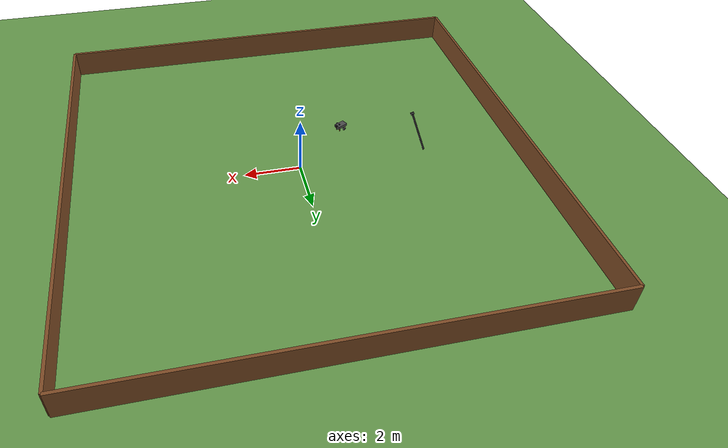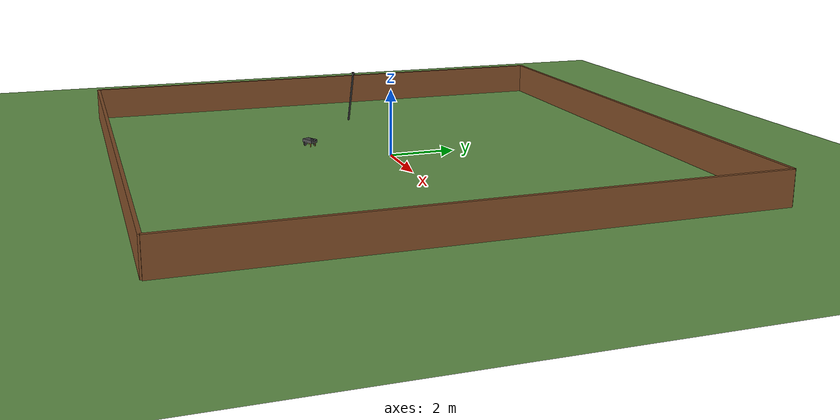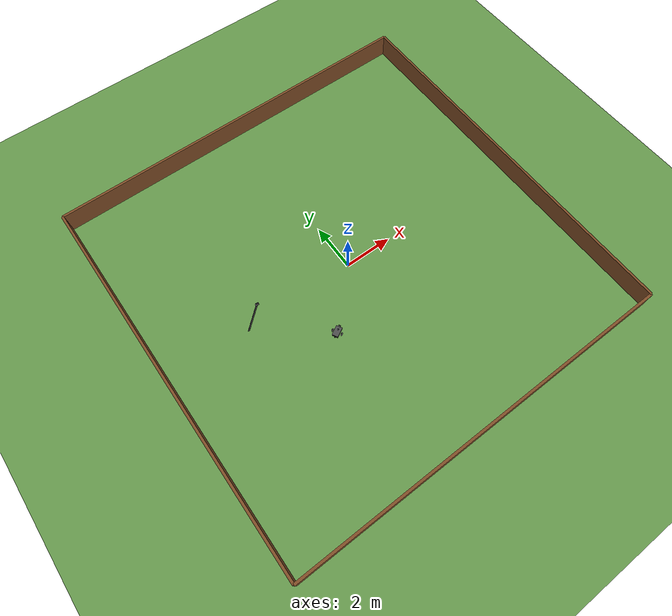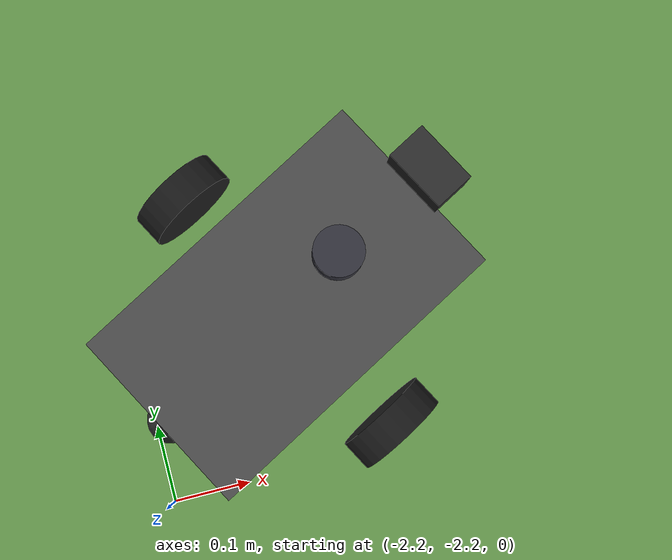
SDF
<sdf version="1.10">
 <world name="farm_world">
  <physics name="default_physics" type="ode">
   <max_step_size>0.001</max_step_size>
   <real_time_factor>1</real_time_factor>
   <real_time_update_rate>1000</real_time_update_rate>
  </physics>
  <plugin name="gz::sim::systems::Physics" filename="gz-sim-physics-system"/>
  <plugin name="gz::sim::systems::UserCommands" filename="gz-sim-user-commands-system"/>
  <plugin name="gz::sim::systems::SceneBroadcaster" filename="gz-sim-scene-broadcaster-system"/>
  <plugin name="gz::sim::systems::Sensors" filename="gz-sim-sensors-system">
   <render_engine>ogre2</render_engine>
  </plugin>
  <scene>
   <ambient>0.600000024 0.600000024 0.600000024 1</ambient>
   <background>0.400000006 0.600000024 0.899999976 1</background>
   <shadows>true</shadows>
   <grid>false</grid>
  </scene>
  <gravity>0 0 -9.8000000000000007</gravity>
  <magnetic_field>5.5644999999999998e-06 2.2875799999999999e-05 -4.2388400000000002e-05</magnetic_field>
  <atmosphere type="adiabatic"/>
  <model name="ground_plane">
   <static>true</static>
   <link name="link">
    <collision name="collision">
     <geometry><plane><normal>0 0 1</normal><size>50 50</size></plane></geometry>
     <surface><friction><ode><mu>1</mu><mu2>1</mu2></ode></friction></surface>
    </collision>
    <visual name="visual">
     <geometry><plane><normal>0 0 1</normal><size>50 50</size></plane></geometry>
     <material>
      <ambient>0.300000012 0.5 0.200000003 1</ambient>
      <diffuse>0.400000006 0.600000024 0.300000012 1</diffuse>
      <specular>0.100000001 0.100000001 0.100000001 1</specular>
     </material>
    </visual>
    <inertial>
     <mass>1</mass>
     <inertia><ixx>1</ixx><ixy>0</ixy><ixz>0</ixz><iyy>1</iyy><iyz>0</iyz><izz>1</izz></inertia>
    </inertial>
   </link>
  </model>
  <model name="fence_front">
   <static>true</static>
   <pose>0 -8 0.5 0 0 0</pose>
   <link name="link">
    <visual name="visual">
     <geometry><box><size>16 0.10000000000000001 1</size></box></geometry>
     <material>
      <ambient>0.400000006 0.25 0.100000001 1</ambient>
      <diffuse>0.5 0.300000012 0.150000006 1</diffuse>
     </material>
    </visual>
    <collision name="collision"><geometry><box><size>16 0.10000000000000001 1</size></box></geometry></collision>
    <inertial>
     <mass>1</mass>
     <inertia><ixx>1</ixx><ixy>0</ixy><ixz>0</ixz><iyy>1</iyy><iyz>0</iyz><izz>1</izz></inertia>
    </inertial>
   </link>
  </model>
  <model name="fence_back">
   <static>true</static>
   <pose>0 8 0.5 0 0 0</pose>
   <link name="link">
    <visual name="visual">
     <geometry><box><size>16 0.10000000000000001 1</size></box></geometry>
     <material>
      <ambient>0.400000006 0.25 0.100000001 1</ambient>
      <diffuse>0.5 0.300000012 0.150000006 1</diffuse>
     </material>
    </visual>
    <collision name="collision"><geometry><box><size>16 0.10000000000000001 1</size></box></geometry></collision>
    <inertial>
     <mass>1</mass>
     <inertia><ixx>1</ixx><ixy>0</ixy><ixz>0</ixz><iyy>1</iyy><iyz>0</iyz><izz>1</izz></inertia>
    </inertial>
   </link>
  </model>
  <model name="fence_left">
   <static>true</static>
   <pose>-8 0 0.5 0 0 1.5708000000000011</pose>
   <link name="link">
    <visual name="visual">
     <geometry><box><size>16 0.10000000000000001 1</size></box></geometry>
     <material>
      <ambient>0.400000006 0.25 0.100000001 1</ambient>
      <diffuse>0.5 0.300000012 0.150000006 1</diffuse>
     </material>
    </visual>
    <collision name="collision"><geometry><box><size>16 0.10000000000000001 1</size></box></geometry></collision>
    <inertial>
     <mass>1</mass>
     <inertia><ixx>1</ixx><ixy>0</ixy><ixz>0</ixz><iyy>1</iyy><iyz>0</iyz><izz>1</izz></inertia>
    </inertial>
   </link>
  </model>
  <model name="fence_right">
   <static>true</static>
   <pose>8 0 0.5 0 0 1.5708000000000011</pose>
   <link name="link">
    <visual name="visual">
     <geometry><box><size>16 0.10000000000000001 1</size></box></geometry>
     <material>
      <ambient>0.400000006 0.25 0.100000001 1</ambient>
      <diffuse>0.5 0.300000012 0.150000006 1</diffuse>
     </material>
    </visual>
    <collision name="collision"><geometry><box><size>16 0.10000000000000001 1</size></box></geometry></collision>
    <inertial>
     <mass>1</mass>
     <inertia><ixx>1</ixx><ixy>0</ixy><ixz>0</ixz><iyy>1</iyy><iyz>0</iyz><izz>1</izz></inertia>
    </inertial>
   </link>
  </model>
  <include>
   <uri>file:///home/sanket758/Education/BSBI/Advanced Robotics Application/yolo_pose_ws/install/yolo_pose_pkg/share/yolo_pose_pkg/models/camera_rig</uri>
   <name>camera_rig_1</name>
   <pose>-3.9999999999999996 0 2.2204460492503131e-16 0 -1.1102230246251568e-16 0</pose>
  </include>
  <include>
   <uri>file:///home/sanket758/Education/BSBI/Advanced Robotics Application/yolo_pose_ws/install/yolo_pose_pkg/share/yolo_pose_pkg/models/spot_micro</uri>
   <name>spot_micro</name>
   <pose>-2.000000000000008 -2.0000000000000067 0.02 8.6032017884711264e-19 6.0351040613328946e-11 0.49999999999999972</pose>
  </include>
  <light name="sun" type="directional">
   <pose>0 0 10 0 0 0</pose>
   <intensity>1</intensity>
   <direction>-0.5 0.29999999999999999 -0.90000000000000002</direction>
   <diffuse>0.899999976 0.899999976 0.800000012 1</diffuse>
   <specular>0.300000012 0.300000012 0.300000012 1</specular>
   <attenuation>
    <range>1000</range>
    <linear>0.01</linear>
    <constant>0.90000000000000002</constant>
    <quadratic>0.001</quadratic>
   </attenuation>
   <spot><inner_angle>0</inner_angle><outer_angle>0</outer_angle><falloff>0</falloff></spot>
  </light>
  <light name="fill_light" type="directional">
   <pose>0 0 10 0 0 0</pose>
   <cast_shadows>false</cast_shadows>
   <intensity>1</intensity>
   <direction>0.5 -0.29999999999999999 -0.5</direction>
   <diffuse>0.300000012 0.300000012 0.400000006 1</diffuse>
   <specular>0.100000001 0.100000001 0.100000001 1</specular>
   <attenuation><range>10</range><linear>1</linear><constant>1</constant><quadratic>0</quadratic></attenuation>
   <spot><inner_angle>0</inner_angle><outer_angle>0</outer_angle><falloff>0</falloff></spot>
  </light>
 </world>
</sdf>

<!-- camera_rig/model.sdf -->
<sdf version="1.9">
  <model name="camera_rig">
    <static>true</static>

    <link name="camera_link">
      <pose>0 0 1.8 0 0.35 0</pose>

      <visual name="mast_visual">
        <pose>0 0 -0.9 0 0 0</pose>
        <geometry>
          <cylinder>
            <radius>0.03</radius>
            <length>1.8</length>
          </cylinder>
        </geometry>
        <material>
          <ambient>0.15 0.15 0.15 1</ambient>
          <diffuse>0.20 0.20 0.20 1</diffuse>
        </material>
      </visual>

      <visual name="head_visual">
        <geometry>
          <box>
            <size>0.12 0.08 0.06</size>
          </box>
        </geometry>
        <material>
          <ambient>0.05 0.05 0.05 1</ambient>
          <diffuse>0.1 0.1 0.1 1</diffuse>
        </material>
      </visual>

      <collision name="head_collision">
        <geometry>
          <box>
            <size>0.12 0.08 0.06</size>
          </box>
        </geometry>
      </collision>

      <sensor name="camera" type="camera">
        <pose>0.08 0 0 0 0 0</pose>
        <always_on>true</always_on>
        <update_rate>30</update_rate>
        <visualize>false</visualize>
        <topic>/camera/image_raw</topic>
        <camera>
          <horizontal_fov>1.047</horizontal_fov>
          <image>
            <width>1280</width>
            <height>720</height>
            <format>R8G8B8</format>
          </image>
          <clip>
            <near>0.1</near>
            <far>100.0</far>
          </clip>
        </camera>
      </sensor>

      <inertial>
        <mass>1.0</mass>
        <inertia>
          <ixx>0.01</ixx>
          <iyy>0.01</iyy>
          <izz>0.01</izz>
          <ixy>0.0</ixy>
          <ixz>0.0</ixz>
          <iyz>0.0</iyz>
        </inertia>
      </inertial>
    </link>
  </model>
</sdf>

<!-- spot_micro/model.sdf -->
<sdf version="1.9">
  <model name="spot_micro">
    <static>false</static>

    <link name="base_link">
      <pose>0 0 0.12 0 0 0</pose>
      <inertial>
        <mass>8.0</mass>
        <inertia>
          <ixx>0.12</ixx>
          <iyy>0.16</iyy>
          <izz>0.22</izz>
          <ixy>0.0</ixy>
          <ixz>0.0</ixz>
          <iyz>0.0</iyz>
        </inertia>
      </inertial>

      <visual name="body_visual">
        <geometry>
          <box>
            <size>0.40 0.24 0.10</size>
          </box>
        </geometry>
        <material>
          <ambient>0.20 0.20 0.20 1</ambient>
          <diffuse>0.30 0.30 0.30 1</diffuse>
          <specular>0.40 0.40 0.40 1</specular>
        </material>
      </visual>

      <!-- Visual-only legs for Spot-like look -->
      <visual name="front_left_leg_visual">
        <pose>0.14 0.09 -0.08 0 0 0</pose>
        <geometry>
          <cylinder>
            <radius>0.015</radius>
            <length>0.16</length>
          </cylinder>
        </geometry>
        <material>
          <ambient>0.65 0.45 0.10 1</ambient>
          <diffuse>0.85 0.60 0.15 1</diffuse>
        </material>
      </visual>
      <visual name="front_right_leg_visual">
        <pose>0.14 -0.09 -0.08 0 0 0</pose>
        <geometry>
          <cylinder>
            <radius>0.015</radius>
            <length>0.16</length>
          </cylinder>
        </geometry>
        <material>
          <ambient>0.65 0.45 0.10 1</ambient>
          <diffuse>0.85 0.60 0.15 1</diffuse>
        </material>
      </visual>
      <visual name="rear_left_leg_visual">
        <pose>-0.14 0.09 -0.08 0 0 0</pose>
        <geometry>
          <cylinder>
            <radius>0.015</radius>
            <length>0.16</length>
          </cylinder>
        </geometry>
        <material>
          <ambient>0.65 0.45 0.10 1</ambient>
          <diffuse>0.85 0.60 0.15 1</diffuse>
        </material>
      </visual>
      <visual name="rear_right_leg_visual">
        <pose>-0.14 -0.09 -0.08 0 0 0</pose>
        <geometry>
          <cylinder>
            <radius>0.015</radius>
            <length>0.16</length>
          </cylinder>
        </geometry>
        <material>
          <ambient>0.65 0.45 0.10 1</ambient>
          <diffuse>0.85 0.60 0.15 1</diffuse>
        </material>
      </visual>

      <!-- Lower profile collision for stability -->
      <collision name="body_collision">
        <pose>0 0 -0.01 0 0 0</pose>
        <geometry>
          <box>
            <size>0.30 0.22 0.06</size>
          </box>
        </geometry>
      </collision>
    </link>

    <link name="left_wheel">
      <pose>0 0.19 0.06 1.5708 0 0</pose>
      <inertial>
        <mass>0.8</mass>
        <inertia>
          <ixx>0.002</ixx>
          <iyy>0.001</iyy>
          <izz>0.002</izz>
          <ixy>0.0</ixy>
          <ixz>0.0</ixz>
          <iyz>0.0</iyz>
        </inertia>
      </inertial>
      <visual name="left_wheel_visual">
        <geometry>
          <cylinder>
            <radius>0.06</radius>
            <length>0.04</length>
          </cylinder>
        </geometry>
        <material>
          <ambient>0.05 0.05 0.05 1</ambient>
          <diffuse>0.10 0.10 0.10 1</diffuse>
        </material>
      </visual>
      <collision name="left_wheel_collision">
        <geometry>
          <cylinder>
            <radius>0.06</radius>
            <length>0.04</length>
          </cylinder>
        </geometry>
        <surface>
          <friction>
            <ode>
              <mu>3.0</mu>
              <mu2>3.0</mu2>
            </ode>
          </friction>
        </surface>
      </collision>
    </link>

    <link name="right_wheel">
      <pose>0 -0.19 0.06 1.5708 0 0</pose>
      <inertial>
        <mass>0.8</mass>
        <inertia>
          <ixx>0.002</ixx>
          <iyy>0.001</iyy>
          <izz>0.002</izz>
          <ixy>0.0</ixy>
          <ixz>0.0</ixz>
          <iyz>0.0</iyz>
        </inertia>
      </inertial>
      <visual name="right_wheel_visual">
        <geometry>
          <cylinder>
            <radius>0.06</radius>
            <length>0.04</length>
          </cylinder>
        </geometry>
        <material>
          <ambient>0.05 0.05 0.05 1</ambient>
          <diffuse>0.10 0.10 0.10 1</diffuse>
        </material>
      </visual>
      <collision name="right_wheel_collision">
        <geometry>
          <cylinder>
            <radius>0.06</radius>
            <length>0.04</length>
          </cylinder>
        </geometry>
        <surface>
          <friction>
            <ode>
              <mu>3.0</mu>
              <mu2>3.0</mu2>
            </ode>
          </friction>
        </surface>
      </collision>
    </link>

    <link name="front_caster_link">
      <pose>0.20 0 0.03 0 0 0</pose>
      <inertial>
        <mass>0.2</mass>
        <inertia>
          <ixx>0.0001</ixx>
          <iyy>0.0001</iyy>
          <izz>0.0001</izz>
          <ixy>0.0</ixy>
          <ixz>0.0</ixz>
          <iyz>0.0</iyz>
        </inertia>
      </inertial>
      <visual name="front_caster_visual">
        <geometry>
          <sphere>
            <radius>0.03</radius>
          </sphere>
        </geometry>
        <material>
          <ambient>0.08 0.08 0.08 1</ambient>
          <diffuse>0.15 0.15 0.15 1</diffuse>
        </material>
      </visual>
      <collision name="front_caster_collision">
        <geometry>
          <sphere>
            <radius>0.03</radius>
          </sphere>
        </geometry>
        <surface>
          <friction>
            <ode>
              <mu>0.02</mu>
              <mu2>0.02</mu2>
            </ode>
          </friction>
        </surface>
      </collision>
    </link>

    <link name="rear_caster_link">
      <pose>-0.20 0 0.03 0 0 0</pose>
      <inertial>
        <mass>0.2</mass>
        <inertia>
          <ixx>0.0001</ixx>
          <iyy>0.0001</iyy>
          <izz>0.0001</izz>
          <ixy>0.0</ixy>
          <ixz>0.0</ixz>
          <iyz>0.0</iyz>
        </inertia>
      </inertial>
      <visual name="rear_caster_visual">
        <geometry>
          <sphere>
            <radius>0.03</radius>
          </sphere>
        </geometry>
        <material>
          <ambient>0.08 0.08 0.08 1</ambient>
          <diffuse>0.15 0.15 0.15 1</diffuse>
        </material>
      </visual>
      <collision name="rear_caster_collision">
        <geometry>
          <sphere>
            <radius>0.03</radius>
          </sphere>
        </geometry>
        <surface>
          <friction>
            <ode>
              <mu>0.02</mu>
              <mu2>0.02</mu2>
            </ode>
          </friction>
        </surface>
      </collision>
    </link>

    <joint name="left_wheel_joint" type="revolute">
      <parent>base_link</parent>
      <child>left_wheel</child>
      <axis>
        <xyz>0 1 0</xyz>
        <dynamics>
          <damping>0.2</damping>
          <friction>0.05</friction>
        </dynamics>
        <limit>
          <lower>-1e16</lower>
          <upper>1e16</upper>
        </limit>
      </axis>
    </joint>

    <joint name="right_wheel_joint" type="revolute">
      <parent>base_link</parent>
      <child>right_wheel</child>
      <axis>
        <xyz>0 1 0</xyz>
        <dynamics>
          <damping>0.2</damping>
          <friction>0.05</friction>
        </dynamics>
        <limit>
          <lower>-1e16</lower>
          <upper>1e16</upper>
        </limit>
      </axis>
    </joint>

    <joint name="front_caster_joint" type="fixed">
      <parent>base_link</parent>
      <child>front_caster_link</child>
    </joint>

    <joint name="rear_caster_joint" type="fixed">
      <parent>base_link</parent>
      <child>rear_caster_link</child>
    </joint>

    <link name="camera_link">
      <pose>0.22 0 0.18 0 0 0</pose>
      <inertial>
        <mass>0.2</mass>
        <inertia>
          <ixx>0.001</ixx>
          <iyy>0.001</iyy>
          <izz>0.001</izz>
          <ixy>0.0</ixy>
          <ixz>0.0</ixz>
          <iyz>0.0</iyz>
        </inertia>
      </inertial>
      <visual name="camera_visual">
        <geometry>
          <box>
            <size>0.05 0.08 0.05</size>
          </box>
        </geometry>
        <material>
          <ambient>0.12 0.12 0.12 1</ambient>
          <diffuse>0.18 0.18 0.18 1</diffuse>
        </material>
      </visual>

      <sensor name="camera" type="camera">
        <pose>0.03 0 0 0 0 0</pose>
        <always_on>true</always_on>
        <update_rate>30</update_rate>
        <visualize>false</visualize>
        <topic>/spot/camera/image_raw</topic>
        <camera>
          <horizontal_fov>1.047</horizontal_fov>
          <image>
            <width>640</width>
            <height>480</height>
            <format>R8G8B8</format>
          </image>
          <clip>
            <near>0.1</near>
            <far>100.0</far>
          </clip>
        </camera>
      </sensor>
    </link>

    <joint name="camera_joint" type="fixed">
      <parent>base_link</parent>
      <child>camera_link</child>
    </joint>

    <link name="lidar_link">
      <pose>0.08 0 0.18 0 0 0</pose>
      <inertial>
        <mass>0.2</mass>
        <inertia>
          <ixx>0.001</ixx>
          <iyy>0.001</iyy>
          <izz>0.001</izz>
          <ixy>0.0</ixy>
          <ixz>0.0</ixz>
          <iyz>0.0</iyz>
        </inertia>
      </inertial>
      <visual name="lidar_visual">
        <geometry>
          <cylinder>
            <radius>0.03</radius>
            <length>0.04</length>
          </cylinder>
        </geometry>
        <material>
          <ambient>0.15 0.15 0.18 1</ambient>
          <diffuse>0.20 0.20 0.24 1</diffuse>
        </material>
      </visual>

      <sensor name="lidar" type="lidar">
        <always_on>true</always_on>
        <update_rate>15</update_rate>
        <visualize>false</visualize>
        <topic>/scan</topic>
        <lidar>
          <scan>
            <horizontal>
              <samples>720</samples>
              <resolution>1</resolution>
              <min_angle>-1.5708</min_angle>
              <max_angle>1.5708</max_angle>
            </horizontal>
          </scan>
          <range>
            <min>0.12</min>
            <max>15.0</max>
            <resolution>0.01</resolution>
          </range>
        </lidar>
      </sensor>
    </link>

    <joint name="lidar_joint" type="fixed">
      <parent>base_link</parent>
      <child>lidar_link</child>
    </joint>

    <plugin filename="gz-sim-diff-drive-system" name="gz::sim::systems::DiffDrive">
      <left_joint>left_wheel_joint</left_joint>
      <right_joint>right_wheel_joint</right_joint>
      <wheel_separation>0.38</wheel_separation>
      <wheel_radius>0.06</wheel_radius>
      <topic>/cmd_vel</topic>
      <odom_topic>/odom</odom_topic>
      <tf_topic>/tf</tf_topic>
      <frame_id>spot_micro/odom</frame_id>
      <child_frame_id>spot_micro/base_link</child_frame_id>
      <odom_publish_frequency>30</odom_publish_frequency>
      <max_linear_velocity>0.35</max_linear_velocity>
      <max_angular_velocity>0.7</max_angular_velocity>
    </plugin>

    <plugin filename="gz-sim-joint-state-publisher-system" name="gz::sim::systems::JointStatePublisher"/>

    <self_collide>false</self_collide>
  </model>
</sdf>
